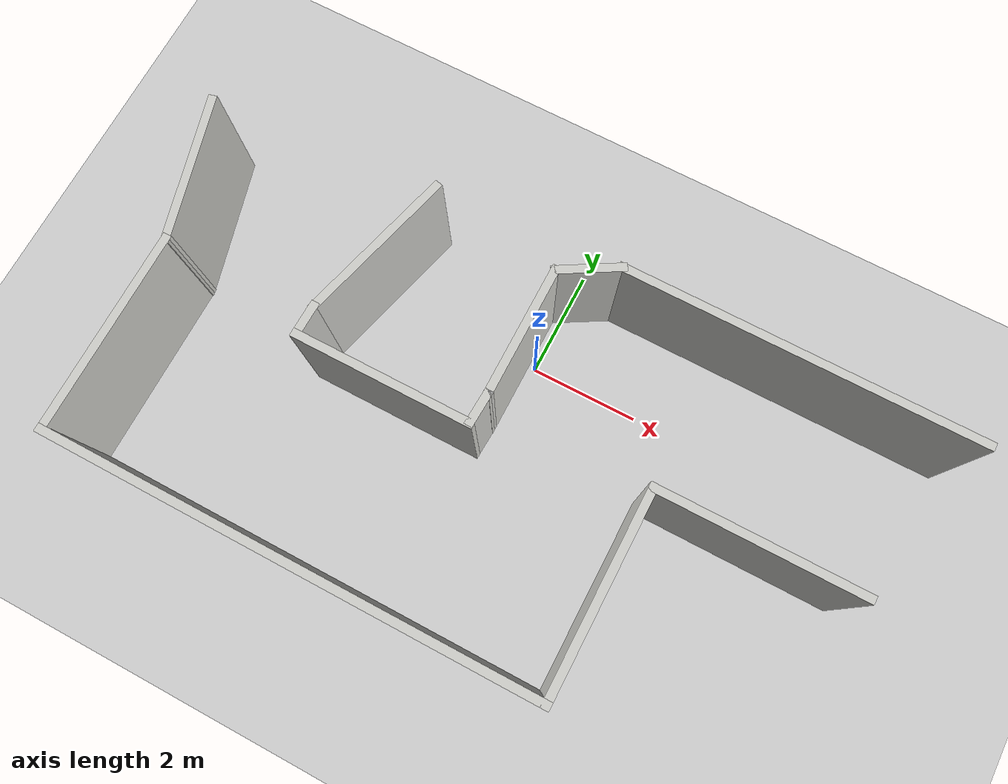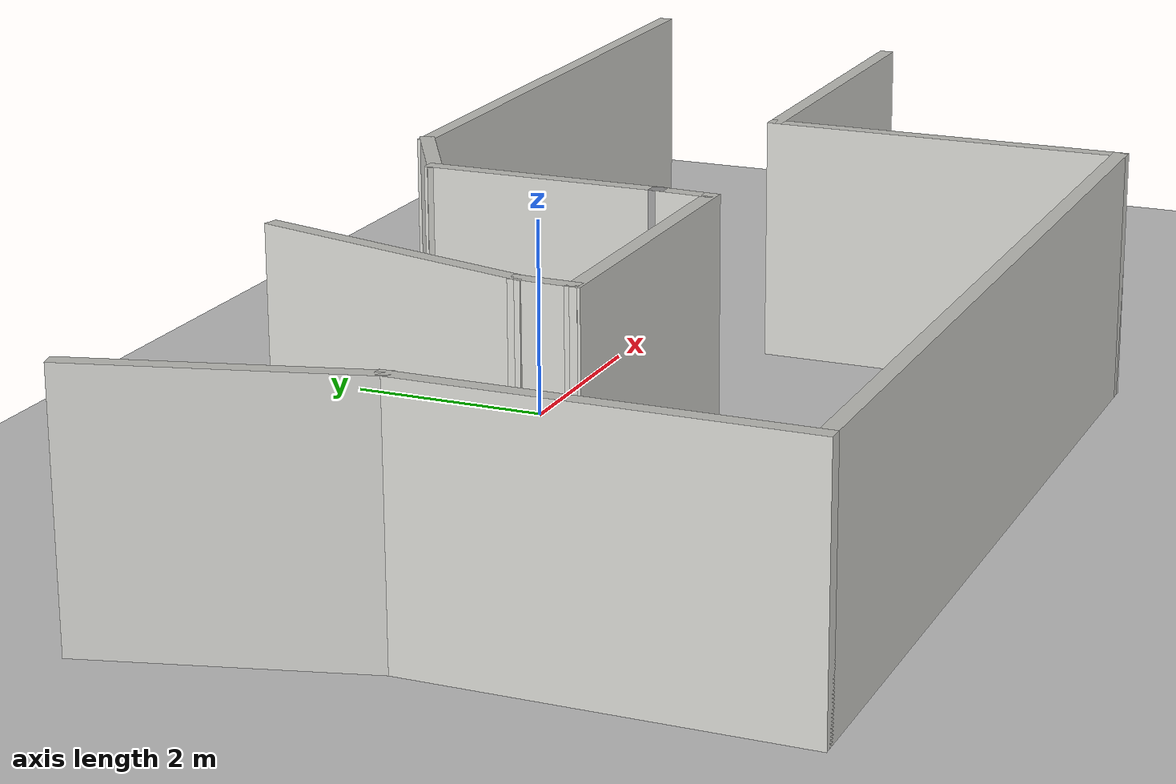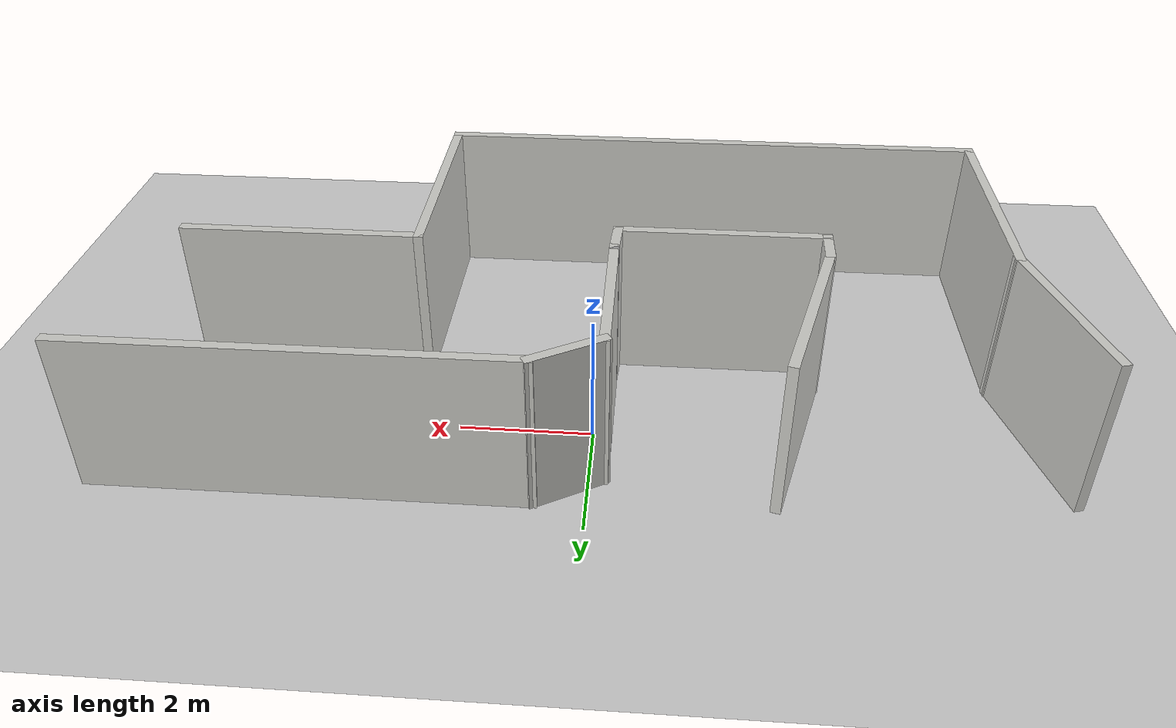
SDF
<sdf version="1.6">
 <world name="default">
  <light name="sun" type="directional">
   <pose>0 0 10 0 -0 0</pose>
   <diffuse>0.8 0.8 0.8 1</diffuse>
   <specular>0.2 0.2 0.2 1</specular>
   <attenuation>
    <range>1000</range>
    <constant>0.9</constant>
    <linear>0.01</linear>
    <quadratic>0.001</quadratic>
   </attenuation>
   <direction>-0.5 0.1 -0.9</direction>
  </light>
  <model name="ground_plane">
   <static>1</static>
   <link name="link">
    <collision name="collision">
     <geometry><plane><normal>0 0 1</normal><size>100 100</size></plane></geometry>
     <surface>
      <contact><collide_bitmask>65535</collide_bitmask></contact>
      <friction><ode><mu>100</mu><mu2>50</mu2></ode></friction>
     </surface>
    </collision>
    <visual name="visual">
     <cast_shadows>0</cast_shadows>
     <geometry><plane><normal>0 0 1</normal><size>100 100</size></plane></geometry>
     <material>
      <script><uri>file://media/materials/scripts/gazebo.material</uri><name>Gazebo/Grey</name></script>
     </material>
    </visual>
   </link>
  </model>
  <gravity>0 0 -9.8</gravity>
  <magnetic_field>6e-06 2.3e-05 -4.2e-05</magnetic_field>
  <atmosphere type="adiabatic"/>
  <physics name="default_physics" default="0" type="ode">
   <max_step_size>0.001</max_step_size>
   <real_time_factor>1</real_time_factor>
   <real_time_update_rate>1000</real_time_update_rate>
  </physics>
  <scene><ambient>0.4 0.4 0.4 1</ambient><background>0.7 0.7 0.7 1</background><shadows>1</shadows></scene>
  <spherical_coordinates>
   <surface_model>EARTH_WGS84</surface_model>
   <latitude_deg>0</latitude_deg>
   <longitude_deg>0</longitude_deg>
   <elevation>0</elevation>
   <heading_deg>0</heading_deg>
  </spherical_coordinates>
  <model name="wallworld">
   <pose>0.144984 -1.73789 0 0 -0 0</pose>
   <link name="Wall_0">
    <collision name="Wall_0_Collision">
     <geometry><box><size>3.75 0.15 2.5</size></box></geometry>
     <pose>0 0 1.25 0 -0 0</pose>
    </collision>
    <visual name="Wall_0_Visual">
     <pose>0 0 1.25 0 -0 0</pose>
     <geometry><box><size>3.75 0.15 2.5</size></box></geometry>
     <material>
      <script><uri>file://media/materials/scripts/gazebo.material</uri><name>Gazebo/CeilingTiled</name></script>
      <ambient>1 1 1 1</ambient>
     </material>
     <meta><layer>0</layer></meta>
    </visual>
    <pose>-6.25498 -1.52211 0 0 -0 -1.5708</pose>
   </link>
   <link name="Wall_1">
    <collision name="Wall_1_Collision">
     <geometry><box><size>9 0.15 2.5</size></box></geometry>
     <pose>0 0 1.25 0 -0 0</pose>
    </collision>
    <visual name="Wall_1_Visual">
     <pose>0 0 1.25 0 -0 0</pose>
     <geometry><box><size>9 0.15 2.5</size></box></geometry>
     <material>
      <script><uri>file://media/materials/scripts/gazebo.material</uri><name>Gazebo/CeilingTiled</name></script>
      <ambient>1 1 1 1</ambient>
     </material>
     <meta><layer>0</layer></meta>
    </visual>
    <pose>-1.82998 -3.32211 0 0 -0 0</pose>
   </link>
   <link name="Wall_12">
    <collision name="Wall_12_Collision">
     <geometry><box><size>0.15 0.15 2.5</size></box></geometry>
     <pose>0 0 1.25 0 -0 0</pose>
    </collision>
    <visual name="Wall_12_Visual">
     <pose>0 0 1.25 0 -0 0</pose>
     <geometry><box><size>0.15 0.15 2.5</size></box></geometry>
     <material>
      <script><uri>file://media/materials/scripts/gazebo.material</uri><name>Gazebo/Grey</name></script>
      <ambient>1 1 1 1</ambient>
     </material>
     <meta><layer>0</layer></meta>
    </visual>
    <pose>-0.357859 0.394662 0 0 -0 0</pose>
   </link>
   <link name="Wall_13">
    <collision name="Wall_13_Collision">
     <geometry><box><size>0.15 0.15 2.5</size></box></geometry>
     <pose>0 0 1.25 0 -0 0</pose>
    </collision>
    <visual name="Wall_13_Visual">
     <pose>0 0 1.25 0 -0 0</pose>
     <geometry><box><size>0.15 0.15 2.5</size></box></geometry>
     <material>
      <script><uri>file://media/materials/scripts/gazebo.material</uri><name>Gazebo/Grey</name></script>
      <ambient>1 1 1 1</ambient>
     </material>
     <meta><layer>0</layer></meta>
    </visual>
    <pose>-0.357859 0.394662 0 0 -0 0</pose>
   </link>
   <link name="Wall_17">
    <collision name="Wall_17_Collision">
     <geometry><box><size>2.5 0.15 2.5</size></box></geometry>
     <pose>0 0 1.25 0 -0 0</pose>
    </collision>
    <visual name="Wall_17_Visual">
     <pose>0 0 1.25 0 -0 0</pose>
     <geometry><box><size>2.5 0.15 2.5</size></box></geometry>
     <material>
      <script><uri>file://media/materials/scripts/gazebo.material</uri><name>Gazebo/CeilingTiled</name></script>
      <ambient>1 1 1 1</ambient>
     </material>
     <meta><layer>0</layer></meta>
    </visual>
    <pose>-0.357859 1.56966 0 0 -0 1.5708</pose>
   </link>
   <link name="Wall_19">
    <collision name="Wall_19_Collision">
     <geometry><box><size>1.25 0.15 2.5</size></box></geometry>
     <pose>0 0 1.25 0 -0 0</pose>
    </collision>
    <visual name="Wall_19_Visual">
     <pose>0 0 1.25 0 -0 0</pose>
     <geometry><box><size>1.25 0.15 2.5</size></box></geometry>
     <material>
      <script><uri>file://media/materials/scripts/gazebo.material</uri><name>Gazebo/CeilingTiled</name></script>
      <ambient>1 1 1 1</ambient>
     </material>
     <meta><layer>0</layer></meta>
    </visual>
    <pose>0.118455 3.01966 0 0 -0 0.523599</pose>
   </link>
   <link name="Wall_2">
    <collision name="Wall_2_Collision">
     <geometry><box><size>3.75 0.15 2.5</size></box></geometry>
     <pose>0 0 1.25 0 -0 0</pose>
    </collision>
    <visual name="Wall_2_Visual">
     <pose>0 0 1.25 0 -0 0</pose>
     <geometry><box><size>3.75 0.15 2.5</size></box></geometry>
     <material>
      <script><uri>file://media/materials/scripts/gazebo.material</uri><name>Gazebo/CeilingTiled</name></script>
      <ambient>1 1 1 1</ambient>
     </material>
     <meta><layer>0</layer></meta>
    </visual>
    <pose>2.59502 -1.52211 0 0 -0 1.5708</pose>
   </link>
   <link name="Wall_20">
    <collision name="Wall_20_Collision">
     <geometry><box><size>6.5 0.15 2.5</size></box></geometry>
     <pose>0 0 1.25 0 -0 0</pose>
    </collision>
    <visual name="Wall_20_Visual">
     <pose>0 0 1.25 0 -0 0</pose>
     <geometry><box><size>6.5 0.15 2.5</size></box></geometry>
     <material>
      <script><uri>file://media/materials/scripts/gazebo.material</uri><name>Gazebo/CeilingTiled</name></script>
      <ambient>1 1 1 1</ambient>
     </material>
     <meta><layer>0</layer></meta>
    </visual>
    <pose>3.76977 3.29466 0 0 -0 0</pose>
   </link>
   <link name="Wall_23">
    <collision name="Wall_23_Collision">
     <geometry><box><size>2.75 0.15 2.5</size></box></geometry>
     <pose>0 0 1.25 0 -0 0</pose>
    </collision>
    <visual name="Wall_23_Visual">
     <pose>0 0 1.25 0 -0 0</pose>
     <geometry><box><size>2.75 0.15 2.5</size></box></geometry>
     <material>
      <script><uri>file://media/materials/scripts/gazebo.material</uri><name>Gazebo/CeilingTiled</name></script>
      <ambient>1 1 1 1</ambient>
     </material>
     <meta><layer>0</layer></meta>
    </visual>
    <pose>-6.59145 1.53359 0 0 -0 1.8326</pose>
   </link>
   <link name="Wall_25">
    <collision name="Wall_25_Collision">
     <geometry><box><size>3 0.15 2.5</size></box></geometry>
     <pose>0 0 1.25 0 -0 0</pose>
    </collision>
    <visual name="Wall_25_Visual">
     <pose>0 0 1.25 0 -0 0</pose>
     <geometry><box><size>3 0.15 2.5</size></box></geometry>
     <material>
      <script><uri>file://media/materials/scripts/gazebo.material</uri><name>Gazebo/CeilingTiled</name></script>
      <ambient>1 1 1 1</ambient>
     </material>
     <meta><layer>0</layer></meta>
    </visual>
    <pose>-3.14879 1.77111 0 0 -0 1.309</pose>
   </link>
   <link name="Wall_3">
    <collision name="Wall_3_Collision">
     <geometry><box><size>3.75 0.15 2.5</size></box></geometry>
     <pose>0 0 1.25 0 -0 0</pose>
    </collision>
    <visual name="Wall_3_Visual">
     <pose>0 0 1.25 0 -0 0</pose>
     <geometry><box><size>3.75 0.15 2.5</size></box></geometry>
     <material>
      <script><uri>file://media/materials/scripts/gazebo.material</uri><name>Gazebo/CeilingTiled</name></script>
      <ambient>1 1 1 1</ambient>
     </material>
     <meta><layer>0</layer></meta>
    </visual>
    <pose>4.39502 0.277887 0 0 -0 0</pose>
   </link>
   <link name="Wall_5">
    <collision name="Wall_5_Collision">
     <geometry><box><size>0.659567 0.15 2.5</size></box></geometry>
     <pose>0 0 1.25 0 -0 0</pose>
    </collision>
    <visual name="Wall_5_Visual">
     <pose>0 0 1.25 0 -0 0</pose>
     <geometry><box><size>0.659567 0.15 2.5</size></box></geometry>
     <material>
      <script><uri>file://media/materials/scripts/gazebo.material</uri><name>Gazebo/CeilingTiled</name></script>
      <ambient>1 1 1 1</ambient>
     </material>
     <meta><layer>0</layer></meta>
    </visual>
    <pose>-3.5243 0.139966 0 0 -0 -1.59705</pose>
   </link>
   <link name="Wall_6">
    <collision name="Wall_6_Collision">
     <geometry><box><size>3.29652 0.15 2.5</size></box></geometry>
     <pose>0 0 1.25 0 -0 0</pose>
    </collision>
    <visual name="Wall_6_Visual">
     <pose>0 0 1.25 0 -0 0</pose>
     <geometry><box><size>3.29652 0.15 2.5</size></box></geometry>
     <material>
      <script><uri>file://media/materials/scripts/gazebo.material</uri><name>Gazebo/CeilingTiled</name></script>
      <ambient>1 1 1 1</ambient>
     </material>
     <meta><layer>0</layer></meta>
    </visual>
    <pose>-1.95772 -0.14133 0 0 -0 0</pose>
   </link>
   <link name="Wall_7">
    <collision name="Wall_7_Collision">
     <geometry><box><size>0.660086 0.15 2.5</size></box></geometry>
     <pose>0 0 1.25 0 -0 0</pose>
    </collision>
    <visual name="Wall_7_Visual">
     <pose>0 0 1.25 0 -0 0</pose>
     <geometry><box><size>0.660086 0.15 2.5</size></box></geometry>
     <material>
      <script><uri>file://media/materials/scripts/gazebo.material</uri><name>Gazebo/CeilingTiled</name></script>
      <ambient>1 1 1 1</ambient>
     </material>
     <meta><layer>0</layer></meta>
    </visual>
    <pose>-0.371159 0.139966 0 0 -0 1.51862</pose>
   </link>
   <static>1</static>
  </model>
 </world>
</sdf>
